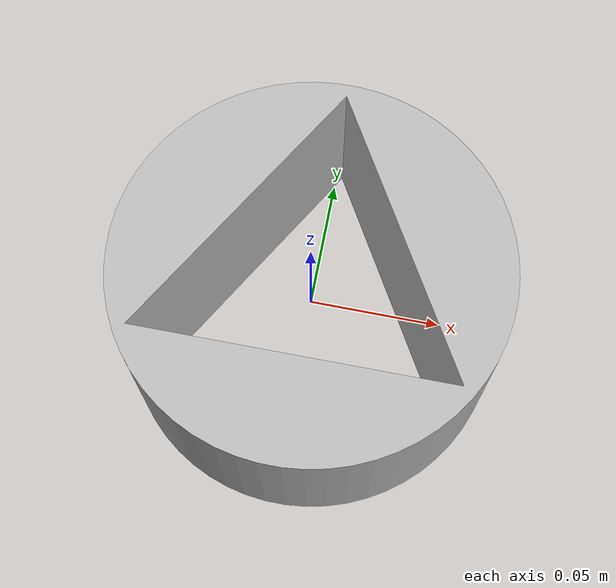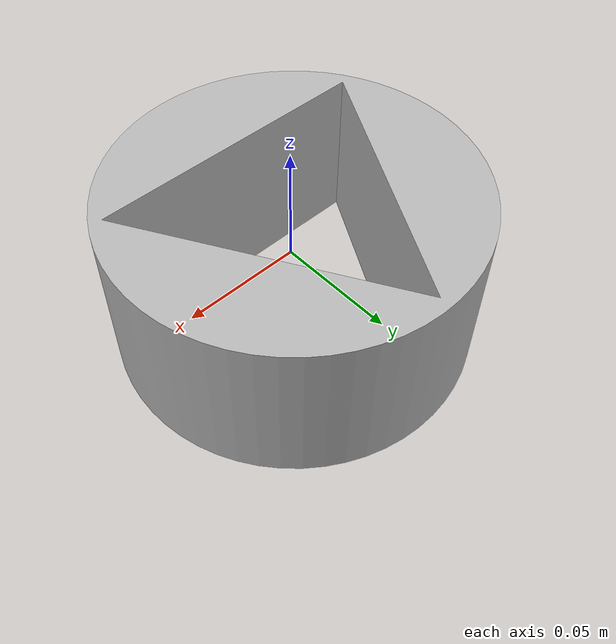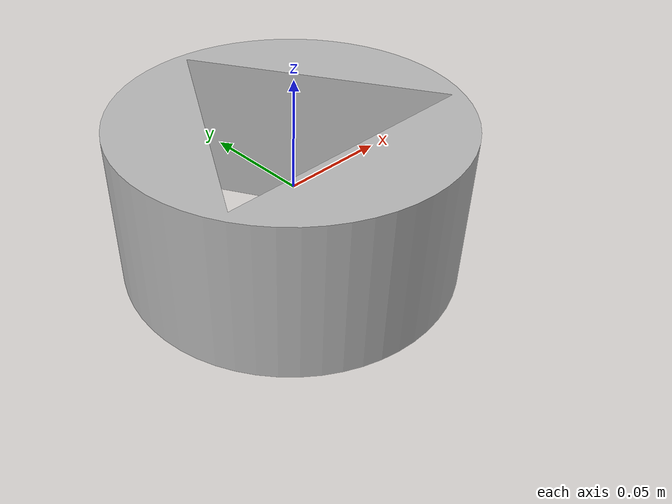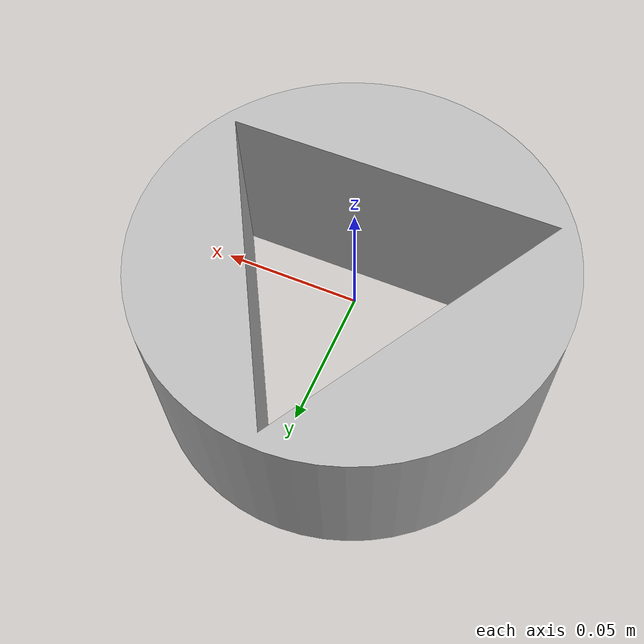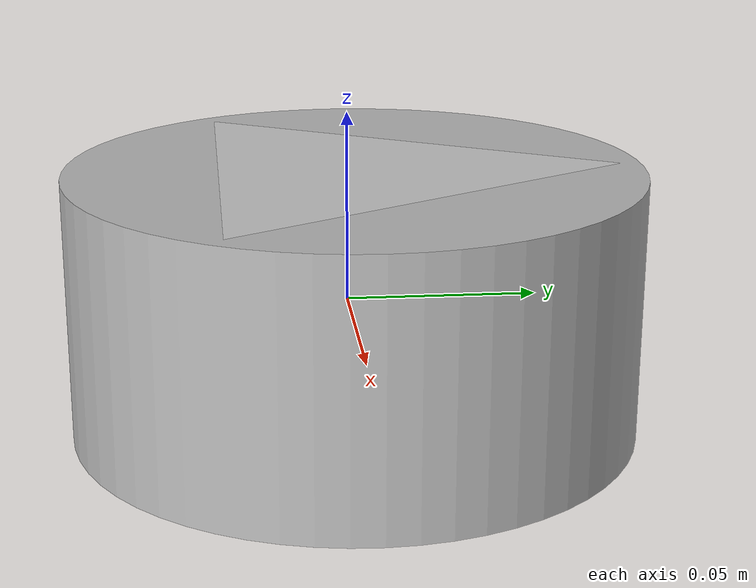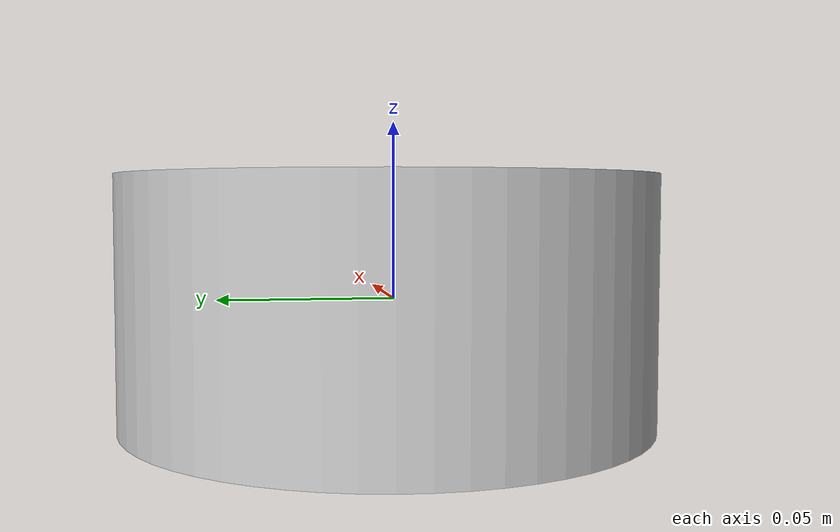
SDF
<?xml version="1.0" ?>
<sdf version='1.4'>
  <model name="3hole">
      <static>0</static>
      <link name='link'>
        <inertial>
          <mass>0.25</mass>
          <inertia>
            <ixx>0.000041667</ixx>
            <ixy>0.000000</ixy>
            <ixz>0.000000</ixz>
            <iyy>0.000041667</iyy>
            <iyz>0.000000</iyz>
            <izz>0.000041667</izz>
          </inertia>
        </inertial>
        <visual name='visual'>
          <geometry>
            <mesh>
              <uri>model://3hole/meshes/3hole.dae</uri>
	          <scale> 1.5 1.5 1 </scale>
            </mesh>
          </geometry>
        </visual>
        <collision name='collision'>
          <geometry>
            <mesh>
              <uri>model://3hole/meshes/3hole.dae</uri>
	          <scale> 1.5 1.5 1 </scale>
            </mesh>
          </geometry>
          <surface>
            <friction>
              <ode>
                <mu>30.0</mu>
                <mu2>30.0</mu2>
              </ode>
            </friction>
            <contact>
              <ode>
                <kp>1000000.0</kp>
                <kd>100.0</kd>
                <max_vel>1.0</max_vel>
                <min_depth>0.0025</min_depth>
              </ode>
            </contact>
          </surface>
        </collision>
        <velocity_decay>
          <linear>0.000000</linear>
          <angular>0.000000</angular>
        </velocity_decay>
        <self_collide>0</self_collide>
        <kinematic>0</kinematic>
        <gravity>1</gravity>
      </link>

	  <joint name="w_2_3hole" type="revolute">
	    <parent>world</parent>
	    <child>link</child>
		<pose>0.45 0.7 0.83 0 0 1.5708</pose>
		<axis>
		  <xyz>0 0 1</xyz>
		</axis>
	  </joint>

	  <joint name="w_2_3hole2" type="revolute">
	    <parent>world</parent>
	    <child>link</child>
		<pose>0.45 0.7 0.83 0 0 1.5708</pose>
		<axis>
		  <xyz>1 0 0</xyz>
		</axis>
	  </joint>

  </model>
</sdf>
